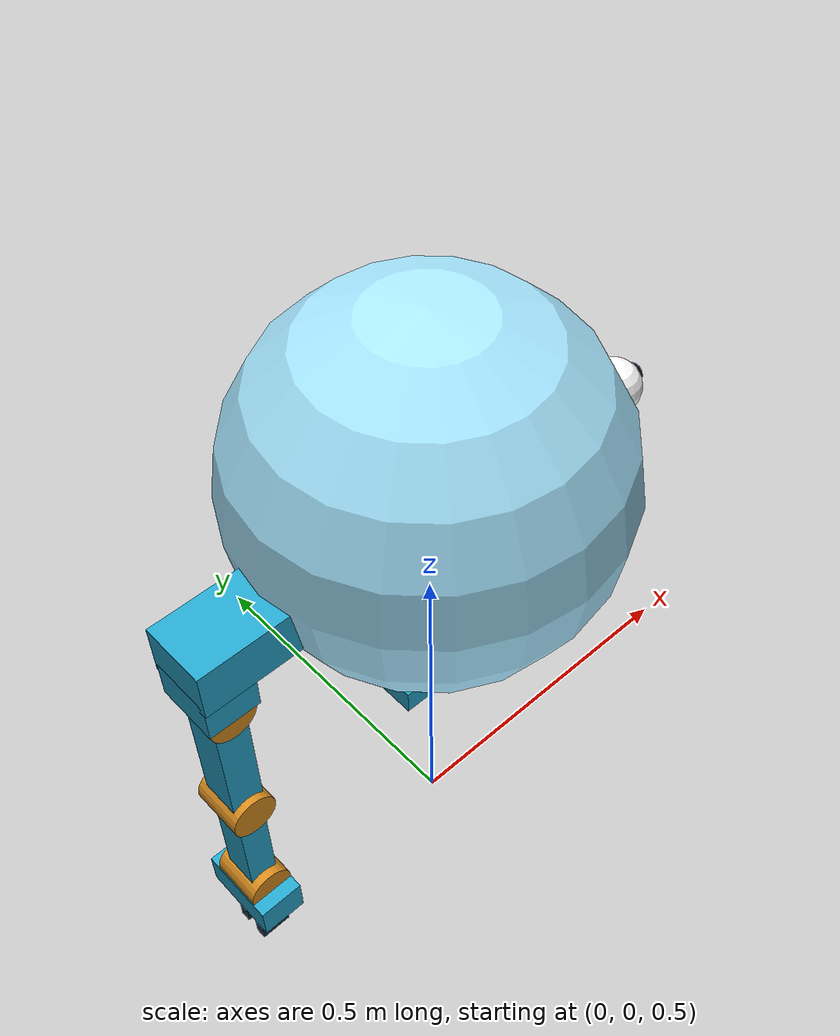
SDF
<sdf version="1.8">
 <world name="ghost_room">
  <model name="ghost">
   <pose>0 0 1.2 0 0 0</pose>
   <link name="base_link">
    <gravity>false</gravity>
    <inertial>
     <mass>1.0</mass>
     <inertia><ixx>0.03136</ixx><iyy>0.03136</iyy><izz>0.03136</izz><ixy>0</ixy><ixz>0</ixz><iyz>0</iyz></inertia>
    </inertial>
    <collision name="sphere_collision"><geometry><sphere><radius>0.28</radius></sphere></geometry></collision>
    <visual name="ghost_body">
     <geometry><sphere><radius>0.25</radius></sphere></geometry>
     <material><ambient>0.65 0.9 1.0 1</ambient><diffuse>0.65 0.9 1.0 1</diffuse></material>
    </visual>
    <visual name="left_eye">
     <pose>0.225 0.075 0.05 0 0 0</pose>
     <geometry><sphere><radius>0.035</radius></sphere></geometry>
     <material><ambient>1 1 1 1</ambient><diffuse>1 1 1 1</diffuse></material>
    </visual>
    <visual name="left_pupil">
     <pose>0.253 0.075 0.05 0 0 0</pose>
     <geometry><sphere><radius>0.016</radius></sphere></geometry>
     <material><ambient>0.025 0.04 0.10 1</ambient><diffuse>0.025 0.04 0.10 1</diffuse></material>
    </visual>
    <visual name="right_eye">
     <pose>0.225 -0.075 0.05 0 0 0</pose>
     <geometry><sphere><radius>0.035</radius></sphere></geometry>
     <material><ambient>1 1 1 1</ambient><diffuse>1 1 1 1</diffuse></material>
    </visual>
    <visual name="right_pupil">
     <pose>0.253 -0.075 0.05 0 0 0</pose>
     <geometry><sphere><radius>0.016</radius></sphere></geometry>
     <material><ambient>0.025 0.04 0.10 1</ambient><diffuse>0.025 0.04 0.10 1</diffuse></material>
    </visual>
    <visual name="mouth">
     <pose>0.245 0 -0.065 0 0 0</pose>
     <geometry><sphere><radius>0.018</radius></sphere></geometry>
     <material><ambient>0.06 0.10 0.20 1</ambient><diffuse>0.06 0.10 0.20 1</diffuse></material>
    </visual>
    <sensor name="rgbd" type="rgbd_camera">
     <pose>0.29 0 0 0 0 0</pose>
     <topic>/camera</topic>
     <always_on>true</always_on>
     <update_rate>5</update_rate>
     <camera>
      <horizontal_fov>1.0471975512</horizontal_fov>
      <optical_frame_id>camera_optical_frame</optical_frame_id>
      <image><width>320</width><height>240</height><format>R8G8B8</format></image>
      <clip><near>0.1</near><far>8.0</far></clip>
     </camera>
    </sensor>
   </link>
   <plugin filename="ignition-gazebo-velocity-control-system" name="ignition::gazebo::systems::VelocityControl">
    <topic>/model/ghost/cmd_vel</topic>
    <initial_linear>0 0 0</initial_linear>
    <initial_angular>0 0 0</initial_angular>
   </plugin>
   <plugin filename="ignition-gazebo-pose-publisher-system" name="ignition::gazebo::systems::PosePublisher">
    <publish_link_pose>true</publish_link_pose>
    <publish_model_pose>true</publish_model_pose>
    <publish_nested_model_pose>true</publish_nested_model_pose>
    <use_pose_vector_msg>true</use_pose_vector_msg>
    <update_frequency>50</update_frequency>
   </plugin>
   <link name="bottom_mount">
    <pose>0 0 -0.25 0 0 0</pose>
    <inertial>
     <mass>0.08</mass>
     <inertia>
      <ixx>0.00022416666666666665</ixx>
      <iyy>0.0003921666666666667</iyy>
      <izz>0.0006</izz>
      <ixy>0</ixy>
      <ixz>0</ixz>
      <iyz>0</iyz>
     </inertia>
    </inertial>
    <visual name="bottom_mount_visual">
     <geometry><box><size>0.24 0.18 0.035</size></box></geometry>
     <material><ambient>0.15 0.65 0.8 1</ambient><diffuse>0.15 0.65 0.8 1</diffuse></material>
    </visual>
    <collision name="bottom_mount_collision">
     <geometry><box><size>0.24 0.18 0.035</size></box></geometry>
    </collision>
   </link>
   <joint name="bottom_mount_fixed" type="fixed"><parent>base_link</parent><child>bottom_mount</child></joint>
   <link name="grasp_camera_link">
    <pose>0.065 0 -0.29 0 0 0</pose>
    <inertial>
     <mass>0.04</mass>
     <inertia>
      <ixx>3.741666666666668e-05</ixx>
      <iyy>1.816666666666667e-05</iyy>
      <izz>4.741666666666667e-05</izz>
      <ixy>0</ixy>
      <ixz>0</ixz>
      <iyz>0</iyz>
     </inertia>
    </inertial>
    <visual name="grasp_camera_link_visual">
     <geometry><box><size>0.065 0.1 0.035</size></box></geometry>
     <material><ambient>0.10 0.20 0.28 1</ambient><diffuse>0.10 0.20 0.28 1</diffuse></material>
    </visual>
    <collision name="grasp_camera_link_collision">
     <geometry><box><size>0.065 0.1 0.035</size></box></geometry>
    </collision>
    <sensor name="grasp_rgbd" type="rgbd_camera">
     <pose>0 0 -0.02 0 1.57079632679 0</pose>
     <topic>/grasp_camera</topic>
     <always_on>true</always_on>
     <update_rate>5</update_rate>
     <camera>
      <horizontal_fov>1.2217304764</horizontal_fov>
      <optical_frame_id>grasp_camera_optical_frame</optical_frame_id>
      <lens>
       <intrinsics>
        <fx>228.50368107777308</fx>
        <fy>228.50368107777308</fy>
        <cx>159.5</cx>
        <cy>119.5</cy>
        <s>0</s>
       </intrinsics>
      </lens>
      <image><width>320</width><height>240</height><format>R8G8B8</format></image>
      <clip><near>0.05</near><far>4</far></clip>
     </camera>
    </sensor>
   </link>
   <joint name="grasp_camera_fixed" type="fixed">
    <parent>bottom_mount</parent>
    <child>grasp_camera_link</child>
   </joint>
   <link name="tail_bracket">
    <pose>-0.27 0 -0.04 0 0 0</pose>
    <inertial>
     <pose>-0.025 0 0 0 0 0</pose>
     <mass>0.06</mass>
     <inertia>
      <ixx>6.5e-05</ixx>
      <iyy>0.00012250000000000002</iyy>
      <izz>0.0001385</izz>
      <ixy>0</ixy>
      <ixz>0</ixz>
      <iyz>0</iyz>
     </inertia>
    </inertial>
    <visual name="tail_bracket_visual">
     <pose>-0.025 0 0 0 0 0</pose>
     <geometry><box><size>0.14 0.09 0.07</size></box></geometry>
     <material><ambient>0.15 0.65 0.8 1</ambient><diffuse>0.15 0.65 0.8 1</diffuse></material>
    </visual>
    <collision name="tail_bracket_collision">
     <pose>-0.025 0 0 0 0 0</pose>
     <geometry><box><size>0.14 0.09 0.07</size></box></geometry>
    </collision>
   </link>
   <joint name="tail_bracket_fixed" type="fixed"><parent>base_link</parent><child>tail_bracket</child></joint>
   <link name="tail_yaw_link">
    <self_collide>true</self_collide>
    <pose>-0.33 0 -0.08 0 0 0</pose>
    <inertial>
     <pose>0 0 -0.012 0 0 0</pose>
     <mass>0.05</mass>
     <inertia>
      <ixx>4.2708333333333346e-05</ixx>
      <iyy>3.302083333333334e-05</iyy>
      <izz>5.0520833333333346e-05</izz>
      <ixy>0</ixy>
      <ixz>0</ixz>
      <iyz>0</iyz>
     </inertia>
    </inertial>
    <visual name="tail_yaw_link_visual">
     <pose>0 0 -0.012 0 0 0</pose>
     <geometry><box><size>0.07 0.085 0.055</size></box></geometry>
     <material><ambient>0.15 0.65 0.8 1</ambient><diffuse>0.15 0.65 0.8 1</diffuse></material>
    </visual>
    <collision name="tail_yaw_link_collision">
     <pose>0 0 -0.012 0 0 0</pose>
     <geometry><box><size>0.07 0.085 0.055</size></box></geometry>
    </collision>
    <visual name="bearing">
     <geometry><cylinder><radius>0.032</radius><length>0.075</length></cylinder></geometry>
     <material><ambient>0.85 0.55 0.12 1</ambient><diffuse>0.85 0.55 0.12 1</diffuse></material>
    </visual>
   </link>
   <joint name="tail_yaw" type="revolute">
    <parent>tail_bracket</parent>
    <child>tail_yaw_link</child>
    <axis>
     <xyz>0 0 1</xyz>
     <limit><lower>-1.3</lower><upper>1.3</upper><effort>8</effort><velocity>1</velocity></limit>
     <dynamics><damping>0.08</damping></dynamics>
    </axis>
   </joint>
   <plugin filename="ignition-gazebo-joint-position-controller-system" name="ignition::gazebo::systems::JointPositionController">
    <joint_name>tail_yaw</joint_name>
    <topic>/model/ghost/joint/tail_yaw/0/cmd_pos</topic>
    <p_gain>5</p_gain>
    <d_gain>0.15</d_gain>
    <cmd_max>8</cmd_max>
    <cmd_min>-8</cmd_min>
   </plugin>
   <link name="tail_upper">
    <self_collide>true</self_collide>
    <pose>-0.33 0 -0.125 0 0 0</pose>
    <inertial>
     <pose>0 0 -0.11 0 0 0</pose>
     <mass>0.08</mass>
     <inertia>
      <ixx>0.0003428333333333333</ixx>
      <iyy>0.0003361666666666667</iyy>
      <izz>3.366666666666667e-05</izz>
      <ixy>0</ixy>
      <ixz>0</ixz>
      <iyz>0</iyz>
     </inertia>
    </inertial>
    <visual name="tail_upper_visual">
     <pose>0 0 -0.11 0 0 0</pose>
     <geometry><box><size>0.045 0.055 0.22</size></box></geometry>
     <material><ambient>0.15 0.65 0.8 1</ambient><diffuse>0.15 0.65 0.8 1</diffuse></material>
    </visual>
    <collision name="tail_upper_collision">
     <pose>0 0 -0.11 0 0 0</pose>
     <geometry><box><size>0.045 0.055 0.22</size></box></geometry>
    </collision>
    <visual name="bearing">
     <pose>0 0 0 1.57079632679 0 0</pose>
     <geometry><cylinder><radius>0.032</radius><length>0.075</length></cylinder></geometry>
     <material><ambient>0.85 0.55 0.12 1</ambient><diffuse>0.85 0.55 0.12 1</diffuse></material>
    </visual>
   </link>
   <joint name="tail_shoulder" type="revolute">
    <parent>tail_yaw_link</parent>
    <child>tail_upper</child>
    <axis>
     <xyz>0 1 0</xyz>
     <limit><lower>-1.6</lower><upper>0.7</upper><effort>8</effort><velocity>1</velocity></limit>
     <dynamics><damping>0.08</damping></dynamics>
    </axis>
   </joint>
   <plugin filename="ignition-gazebo-joint-position-controller-system" name="ignition::gazebo::systems::JointPositionController">
    <joint_name>tail_shoulder</joint_name>
    <topic>/model/ghost/joint/tail_shoulder/0/cmd_pos</topic>
    <p_gain>5</p_gain>
    <d_gain>0.15</d_gain>
    <cmd_max>8</cmd_max>
    <cmd_min>-8</cmd_min>
   </plugin>
   <link name="tail_lower">
    <self_collide>true</self_collide>
    <pose>-0.33 0 -0.345 0 0 0</pose>
    <inertial>
     <pose>0 0 -0.1 0 0 0</pose>
     <mass>0.06</mass>
     <inertia>
      <ixx>0.00021250000000000004</ixx>
      <iyy>0.00020800000000000004</iyy>
      <izz>2.05e-05</izz>
      <ixy>0</ixy>
      <ixz>0</ixz>
      <iyz>0</iyz>
     </inertia>
    </inertial>
    <visual name="tail_lower_visual">
     <pose>0 0 -0.1 0 0 0</pose>
     <geometry><box><size>0.04 0.05 0.2</size></box></geometry>
     <material><ambient>0.15 0.65 0.8 1</ambient><diffuse>0.15 0.65 0.8 1</diffuse></material>
    </visual>
    <collision name="tail_lower_collision">
     <pose>0 0 -0.1 0 0 0</pose>
     <geometry><box><size>0.04 0.05 0.2</size></box></geometry>
    </collision>
    <visual name="bearing">
     <pose>0 0 0 1.57079632679 0 0</pose>
     <geometry><cylinder><radius>0.032</radius><length>0.075</length></cylinder></geometry>
     <material><ambient>0.85 0.55 0.12 1</ambient><diffuse>0.85 0.55 0.12 1</diffuse></material>
    </visual>
   </link>
   <joint name="tail_elbow" type="revolute">
    <parent>tail_upper</parent>
    <child>tail_lower</child>
    <axis>
     <xyz>0 1 0</xyz>
     <limit><lower>-1.8</lower><upper>1.8</upper><effort>8</effort><velocity>1</velocity></limit>
     <dynamics><damping>0.08</damping></dynamics>
    </axis>
   </joint>
   <plugin filename="ignition-gazebo-joint-position-controller-system" name="ignition::gazebo::systems::JointPositionController">
    <joint_name>tail_elbow</joint_name>
    <topic>/model/ghost/joint/tail_elbow/0/cmd_pos</topic>
    <p_gain>5</p_gain>
    <d_gain>0.15</d_gain>
    <cmd_max>8</cmd_max>
    <cmd_min>-8</cmd_min>
   </plugin>
   <link name="gripper_palm">
    <self_collide>true</self_collide>
    <pose>-0.33 0 -0.5449999999999999 0 0 0</pose>
    <inertial>
     <pose>0 0 -0.035 0 0 0</pose>
     <mass>0.06</mass>
     <inertia>
      <ixx>8.125e-05</ixx>
      <iyy>3.625e-05</iyy>
      <izz>8.724999999999999e-05</izz>
      <ixy>0</ixy>
      <ixz>0</ixz>
      <iyz>0</iyz>
     </inertia>
    </inertial>
    <visual name="gripper_palm_visual">
     <pose>0 0 -0.035 0 0 0</pose>
     <geometry><box><size>0.065 0.115 0.055</size></box></geometry>
     <material><ambient>0.15 0.65 0.8 1</ambient><diffuse>0.15 0.65 0.8 1</diffuse></material>
    </visual>
    <collision name="gripper_palm_collision">
     <pose>0 0 -0.035 0 0 0</pose>
     <geometry><box><size>0.065 0.115 0.055</size></box></geometry>
    </collision>
    <visual name="bearing">
     <pose>0 0 0 1.57079632679 0 0</pose>
     <geometry><cylinder><radius>0.032</radius><length>0.075</length></cylinder></geometry>
     <material><ambient>0.85 0.55 0.12 1</ambient><diffuse>0.85 0.55 0.12 1</diffuse></material>
    </visual>
   </link>
   <joint name="tail_wrist" type="revolute">
    <parent>tail_lower</parent>
    <child>gripper_palm</child>
    <axis>
     <xyz>0 1 0</xyz>
     <limit><lower>-2.2</lower><upper>2.2</upper><effort>8</effort><velocity>1</velocity></limit>
     <dynamics><damping>0.08</damping></dynamics>
    </axis>
   </joint>
   <plugin filename="ignition-gazebo-joint-position-controller-system" name="ignition::gazebo::systems::JointPositionController">
    <joint_name>tail_wrist</joint_name>
    <topic>/model/ghost/joint/tail_wrist/0/cmd_pos</topic>
    <p_gain>5</p_gain>
    <d_gain>0.15</d_gain>
    <cmd_max>8</cmd_max>
    <cmd_min>-8</cmd_min>
   </plugin>
   <link name="finger_left">
    <self_collide>true</self_collide>
    <pose>-0.33 0.018 -0.605 0 0 0</pose>
    <inertial>
     <pose>0 0 -0.0425 0 0 0</pose>
     <mass>0.02</mass>
     <inertia>
      <ixx>1.2468333333333336e-05</ixx>
      <iyy>1.5416666666666668e-05</iyy>
      <izz>3.8016666666666665e-06</izz>
      <ixy>0</ixy>
      <ixz>0</ixz>
      <iyz>0</iyz>
     </inertia>
    </inertial>
    <visual name="finger_left_visual">
     <pose>0 0 -0.0425 0 0 0</pose>
     <geometry><box><size>0.045 0.016 0.085</size></box></geometry>
     <material><ambient>0.10 0.20 0.28 1</ambient><diffuse>0.10 0.20 0.28 1</diffuse></material>
    </visual>
    <collision name="finger_left_collision">
     <pose>0 0 -0.0425 0 0 0</pose>
     <geometry><box><size>0.045 0.016 0.085</size></box></geometry>
     <surface><friction><ode><mu>1.5</mu><mu2>1.5</mu2></ode></friction></surface>
    </collision>
   </link>
   <joint name="finger_left_slide" type="prismatic">
    <parent>gripper_palm</parent>
    <child>finger_left</child>
    <axis>
     <xyz>0 1 0</xyz>
     <limit><lower>0</lower><upper>0.03</upper><effort>3</effort><velocity>0.06</velocity></limit>
     <dynamics><damping>0.08</damping></dynamics>
    </axis>
   </joint>
   <plugin filename="ignition-gazebo-joint-position-controller-system" name="ignition::gazebo::systems::JointPositionController">
    <i_gain>0</i_gain>
    <i_max>0</i_max>
    <i_min>0</i_min>
    <joint_name>finger_left_slide</joint_name>
    <topic>/model/ghost/joint/finger_left_slide/0/cmd_pos</topic>
    <p_gain>30</p_gain>
    <d_gain>0.3</d_gain>
    <cmd_max>3</cmd_max>
    <cmd_min>-3</cmd_min>
   </plugin>
   <link name="finger_right">
    <self_collide>true</self_collide>
    <pose>-0.33 -0.018 -0.605 0 0 0</pose>
    <inertial>
     <pose>0 0 -0.0425 0 0 0</pose>
     <mass>0.02</mass>
     <inertia>
      <ixx>1.2468333333333336e-05</ixx>
      <iyy>1.5416666666666668e-05</iyy>
      <izz>3.8016666666666665e-06</izz>
      <ixy>0</ixy>
      <ixz>0</ixz>
      <iyz>0</iyz>
     </inertia>
    </inertial>
    <visual name="finger_right_visual">
     <pose>0 0 -0.0425 0 0 0</pose>
     <geometry><box><size>0.045 0.016 0.085</size></box></geometry>
     <material><ambient>0.10 0.20 0.28 1</ambient><diffuse>0.10 0.20 0.28 1</diffuse></material>
    </visual>
    <collision name="finger_right_collision">
     <pose>0 0 -0.0425 0 0 0</pose>
     <geometry><box><size>0.045 0.016 0.085</size></box></geometry>
     <surface><friction><ode><mu>1.5</mu><mu2>1.5</mu2></ode></friction></surface>
    </collision>
   </link>
   <joint name="finger_right_slide" type="prismatic">
    <parent>gripper_palm</parent>
    <child>finger_right</child>
    <axis>
     <xyz>0 -1 0</xyz>
     <limit><lower>0</lower><upper>0.03</upper><effort>3</effort><velocity>0.06</velocity></limit>
     <dynamics><damping>0.08</damping></dynamics>
    </axis>
   </joint>
   <plugin filename="ignition-gazebo-joint-position-controller-system" name="ignition::gazebo::systems::JointPositionController">
    <i_gain>0</i_gain>
    <i_max>0</i_max>
    <i_min>0</i_min>
    <joint_name>finger_right_slide</joint_name>
    <topic>/model/ghost/joint/finger_right_slide/0/cmd_pos</topic>
    <p_gain>30</p_gain>
    <d_gain>0.3</d_gain>
    <cmd_max>3</cmd_max>
    <cmd_min>-3</cmd_min>
   </plugin>
   <link name="grasp_center">
    <pose>-0.33 0 -0.6599999999999999 0 0 0</pose>
    <inertial>
     <mass>0.001</mass>
     <inertia>
      <ixx>1.6666666666666667e-08</ixx>
      <iyy>1.6666666666666667e-08</iyy>
      <izz>1.6666666666666667e-08</izz>
      <ixy>0</ixy>
      <ixz>0</ixz>
      <iyz>0</iyz>
     </inertia>
    </inertial>
   </link>
   <joint name="grasp_center_fixed" type="fixed"><parent>gripper_palm</parent><child>grasp_center</child></joint>
   <plugin filename="libghost_joint_feedback.so" name="ghost_arm::JointFeedback">
    <topic>/ghost/arm/joint_states</topic>
    <joint_name>tail_yaw</joint_name>
    <joint_name>tail_shoulder</joint_name>
    <joint_name>tail_elbow</joint_name>
    <joint_name>tail_wrist</joint_name>
    <joint_name>finger_left_slide</joint_name>
    <joint_name>finger_right_slide</joint_name>
   </plugin>
  </model>
 </world>
</sdf>
